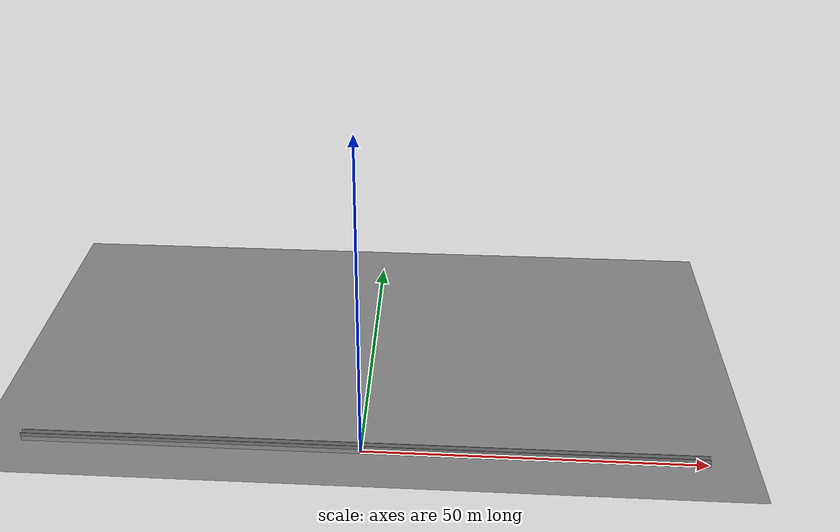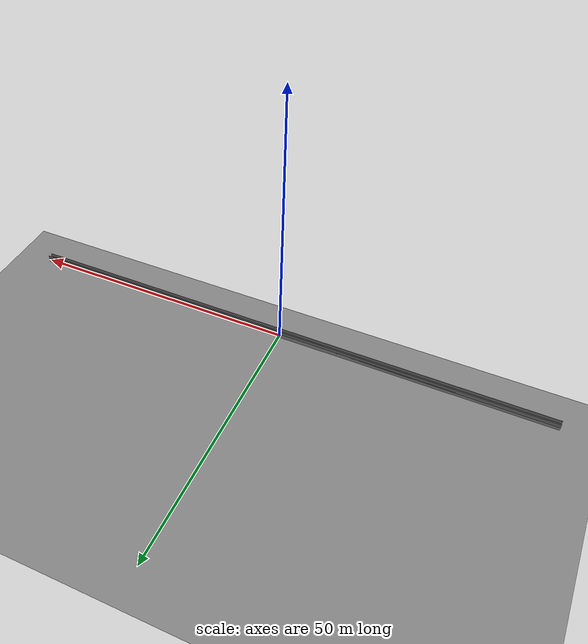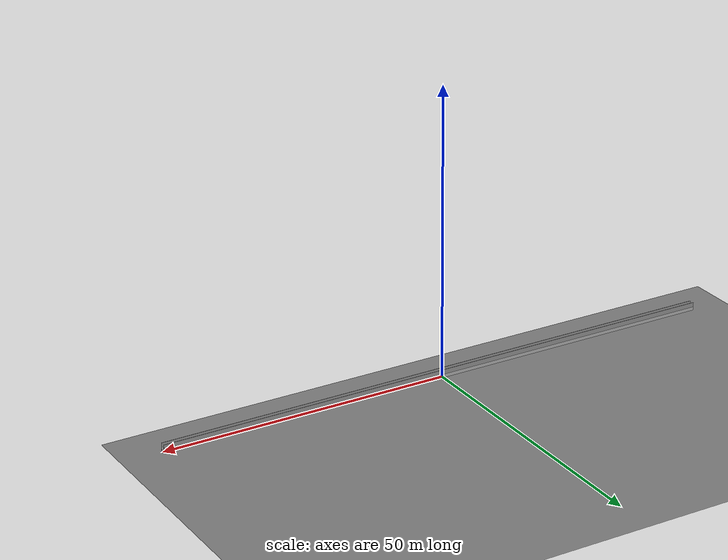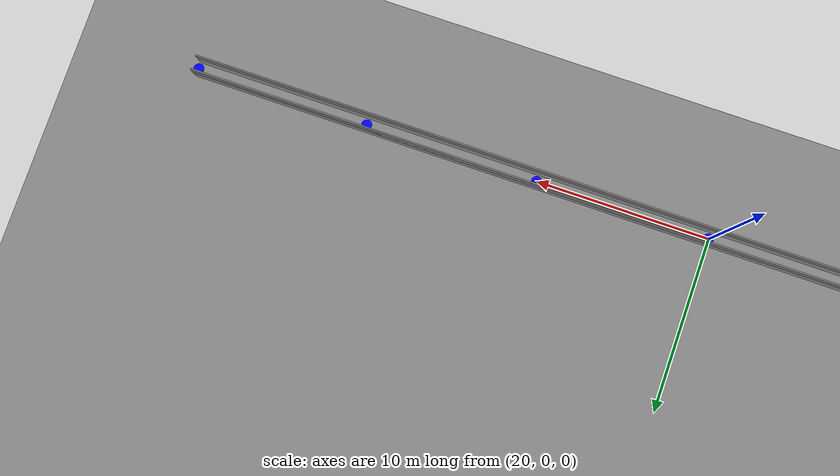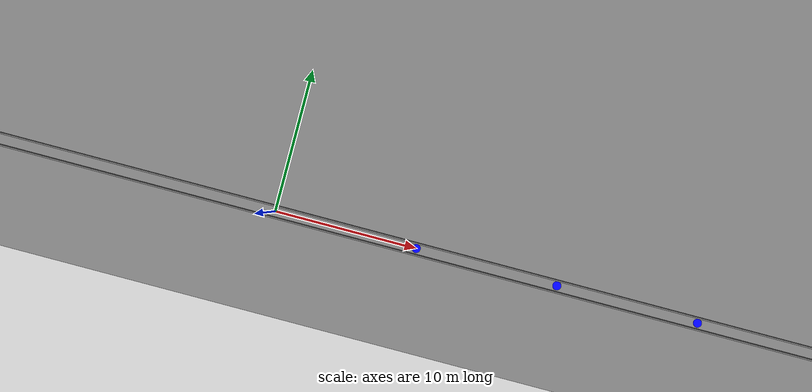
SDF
<?xml version="1.0" ?>

<sdf version="1.6">

  <world name="jalrakshak_pipe_world">

    <!-- ================= LIGHT ================= -->

    <include>
      <uri>model://sun</uri>
    </include>

    <!-- ================= GROUND ================= -->

    <model name="ground">

      <static>true</static>

      <link name="ground_link">

        <collision name="ground_collision">

          <geometry>
            <plane>
              <normal>0 0 1</normal>
              <size>500 20</size>
            </plane>
          </geometry>

        </collision>

        <visual name="ground_visual">

          <geometry>
            <plane>
              <normal>0 0 1</normal>
              <size>500 20</size>
            </plane>
          </geometry>

          <material>
            <ambient>0.3 0.3 0.3 1</ambient>
            <diffuse>0.5 0.5 0.5 1</diffuse>
          </material>

        </visual>

      </link>

    </model>

    <!-- PIPE LEFT WALL                                    -->

    <model name="pipe_left_wall">

      <static>true</static>

      <link name="left_wall">

        <collision name="collision">

          <geometry>
            <box>
              <size>100 0.08 0.8</size>
            </box>
          </geometry>

        </collision>

        <visual name="visual">

          <geometry>
            <box>
              <size>100 0.08 0.8</size>
            </box>
          </geometry>

          <material>
            <ambient>0.4 0.4 0.4 1</ambient>
            <diffuse>0.6 0.6 0.6 1</diffuse>
          </material>

        </visual>

      </link>

      <pose>0 0.40 0.40 0 0 0</pose>

    </model>

    <!-- PIPE RIGHT WALL                                   -->

    <model name="pipe_right_wall">

      <static>true</static>

      <link name="right_wall">

        <collision name="collision">

          <geometry>
            <box>
              <size>100 0.08 0.8</size>
            </box>
          </geometry>

        </collision>

        <visual name="visual">

          <geometry>
            <box>
              <size>100 0.08 0.8</size>
            </box>
          </geometry>

          <material>
            <ambient>0.4 0.4 0.4 1</ambient>
            <diffuse>0.6 0.6 0.6 1</diffuse>
          </material>

        </visual>

      </link>

      <pose>0 -0.40 0.40 0 0 0</pose>

    </model>

    <!-- PIPE TOP LEFT                                    -->

    <model name="pipe_top_left">

      <static>true</static>

      <link name="top_left">

        <visual name="visual">

          <geometry>
            <box>
              <size>100 0.08 0.8</size>
            </box>
          </geometry>

          <material>
            <ambient>0.35 0.35 0.35 1</ambient>
            <diffuse>0.5 0.5 0.5 1</diffuse>
          </material>

        </visual>

      </link>

      <pose>0 0.40 1.0 0 0 0</pose>

    </model>

    <!-- PIPE TOP RIGHT                                   -->

    <model name="pipe_top_right">

      <static>true</static>

      <link name="top_right">

        <visual name="visual">

          <geometry>
            <box>
              <size>100 0.08 0.8</size>
            </box>
          </geometry>

          <material>
            <ambient>0.35 0.35 0.35 1</ambient>
            <diffuse>0.5 0.5 0.5 1</diffuse>
          </material>

        </visual>

      </link>

      <pose>0 -0.40 1.0 0 0 0</pose>

    </model>

    <!-- WATER LEAK 1 - 10 METERS                         -->

    <model name="water_leak_10m">

      <static>true</static>

      <link name="leak_link">

        <visual name="water">

          <geometry>

            <cylinder>
              <radius>0.30</radius>
              <length>0.005</length>
            </cylinder>

          </geometry>

          <material>

            <ambient>0.0 0.0 1.0 1</ambient>
            <diffuse>0.0 0.0 1.0 1</diffuse>

          </material>

        </visual>

      </link>

      <pose>10 0 0.01 0 0 0</pose>

    </model>

    <!-- WATER LEAK 2 - 20 METERS                         -->

    <model name="water_leak_20m">

      <static>true</static>

      <link name="leak_link">

        <visual name="water">

          <geometry>

            <cylinder>
              <radius>0.30</radius>
              <length>0.005</length>
            </cylinder>

          </geometry>

          <material>

            <ambient>0.0 0.0 1.0 1</ambient>
            <diffuse>0.0 0.0 1.0 1</diffuse>

          </material>

        </visual>

      </link>

      <pose>20 0 0.01 0 0 0</pose>

    </model>

    <!-- WATER LEAK 3 - 30 METERS                         -->

    <model name="water_leak_30m">

      <static>true</static>

      <link name="leak_link">

        <visual name="water">

          <geometry>

            <cylinder>
              <radius>0.30</radius>
              <length>0.005</length>
            </cylinder>

          </geometry>

          <material>

            <ambient>0.0 0.0 1.0 1</ambient>
            <diffuse>0.0 0.0 1.0 1</diffuse>

          </material>

        </visual>

      </link>

      <pose>30 0 0.01 0 0 0</pose>

    </model>

    <!-- WATER LEAK 4 - 40 METERS                         -->

    <model name="water_leak_40m">

      <static>true</static>

      <link name="leak_link">

        <visual name="water">

          <geometry>

            <cylinder>
              <radius>0.30</radius>
              <length>0.005</length>
            </cylinder>

          </geometry>

          <material>

            <ambient>0.0 0.0 1.0 1</ambient>
            <diffuse>0.0 0.0 1.0 1</diffuse>

          </material>

        </visual>

      </link>

      <pose>40 0 0.01 0 0 0</pose>

    </model>

    <!-- WATER LEAK 5 - 50 METERS                         -->

    <model name="water_leak_50m">

      <static>true</static>

      <link name="leak_link">

        <visual name="water">

          <geometry>

            <cylinder>
              <radius>0.30</radius>
              <length>0.005</length>
            </cylinder>

          </geometry>

          <material>

            <ambient>0.0 0.0 1.0 1</ambient>
            <diffuse>0.0 0.0 1.0 1</diffuse>

          </material>

        </visual>

      </link>

      <pose>50 0 0.01 0 0 0</pose>

    </model>

    <!-- PHYSICS                                          -->

    <physics type="ode">

      <max_step_size>
        0.001
      </max_step_size>

      <real_time_update_rate>
        1000
      </real_time_update_rate>

    </physics>

    <!-- ================= GRAVITY ================= -->

    <gravity>
      0 0 -9.81
    </gravity>

    <!-- ================= CAMERA ================= -->

    <gui>

      <camera name="user_camera">

        <pose>
          0 -6 4 0.45 0 0
        </pose>

      </camera>

    </gui>

  </world>

</sdf>
